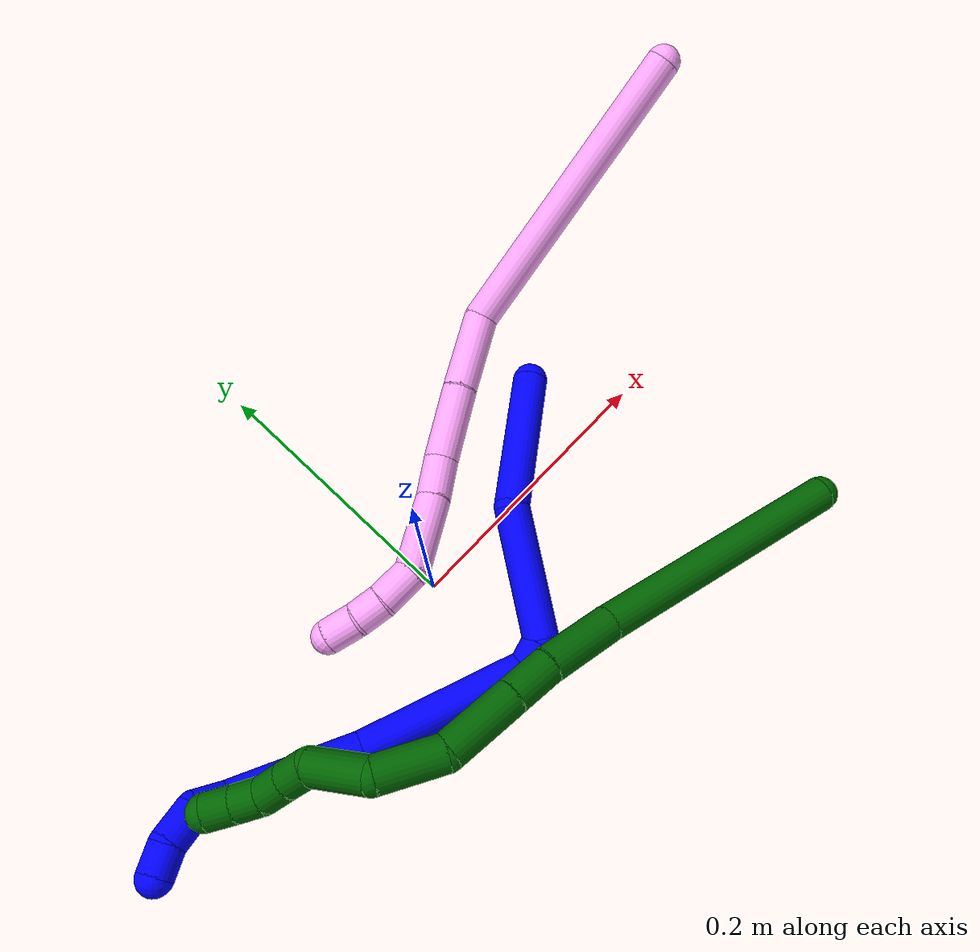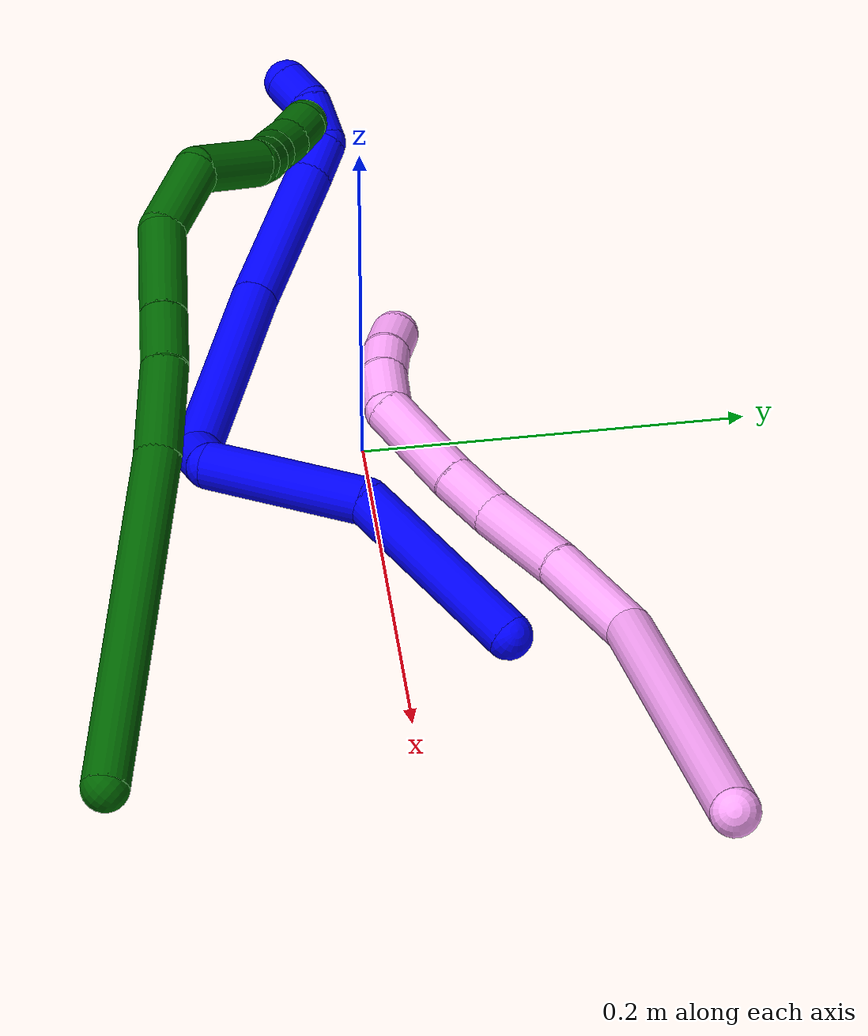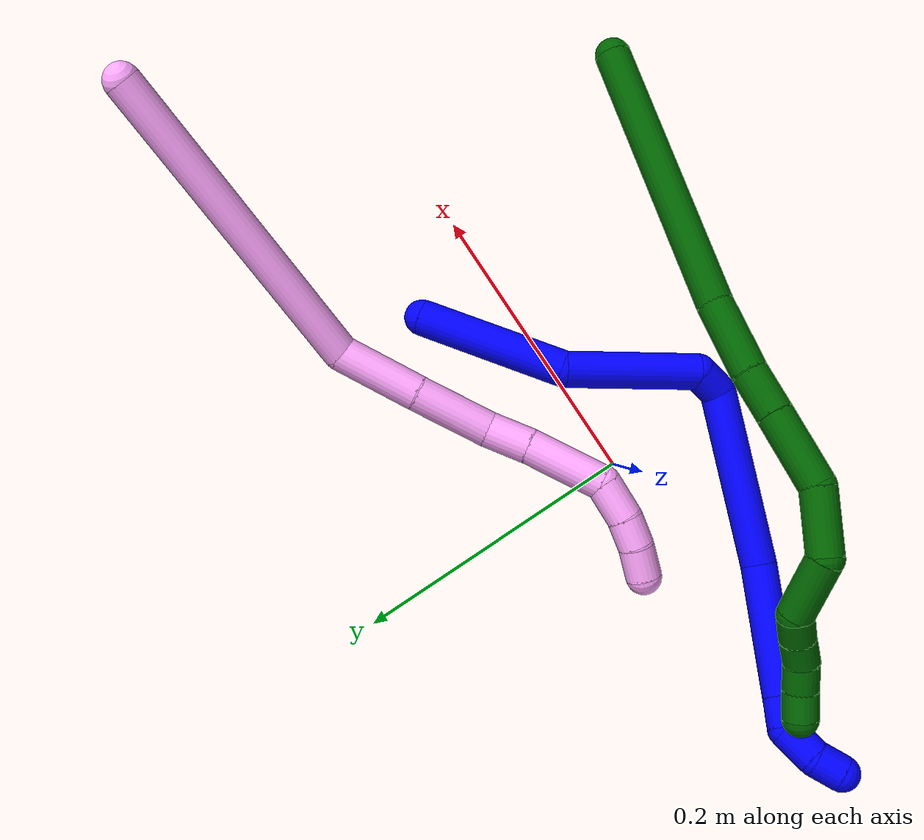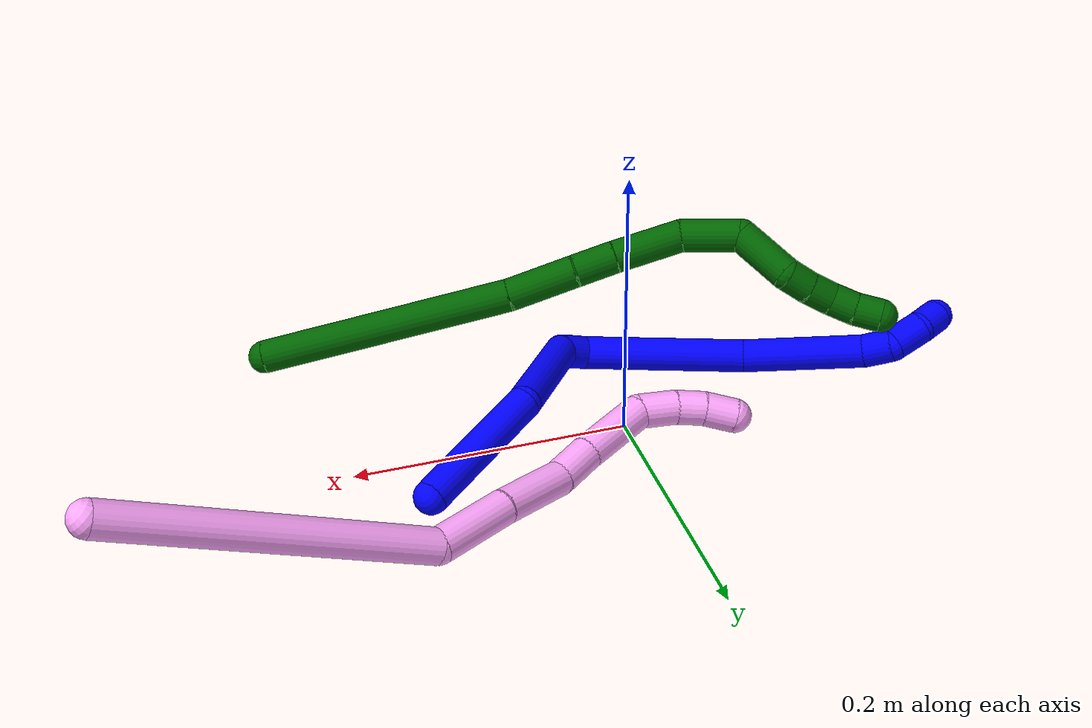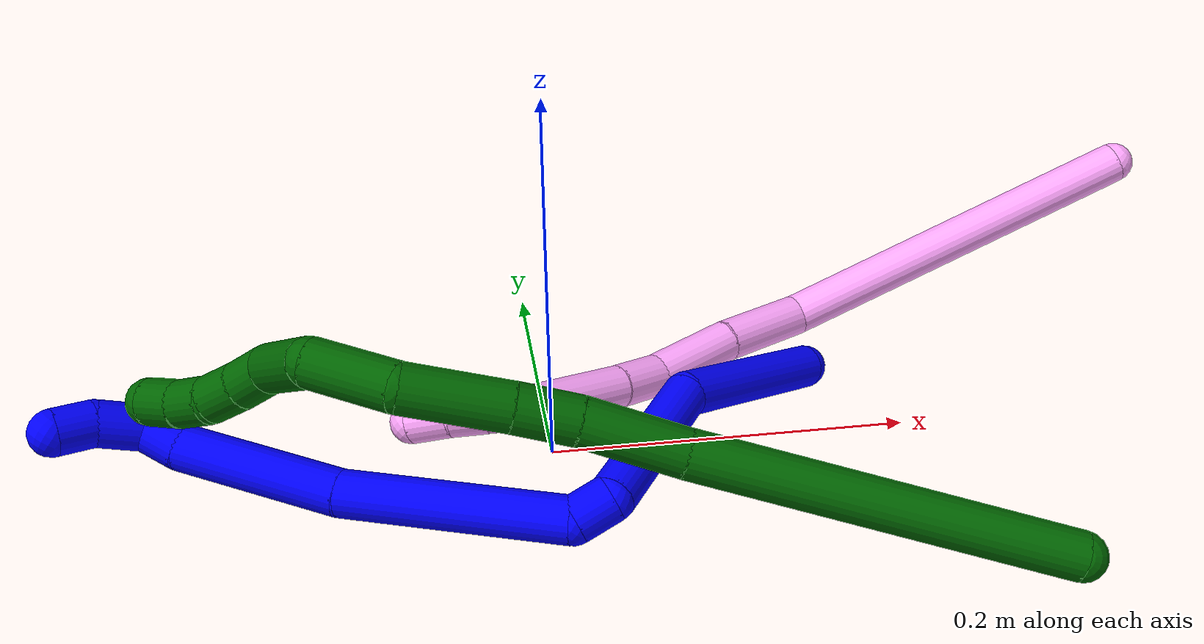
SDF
<sdf version="1.7">
 <world name="default">
  <model name="1">
   <static>0</static>
   <link name="1">
    <collision name="collision-cylinder-e_1_1_4">
     <pose>-0.032006 -0.033837 -0.02488 2.2048 -0.651176 -1.17684</pose>
     <geometry><cylinder><radius>0.0125</radius><length>0.10561</length></cylinder></geometry>
     <surface>
      <friction><ode><mu>1.16</mu><mu2>1.16</mu2><slip1>0</slip1><slip2>0</slip2></ode></friction>
      <contact><ode><kp>1e+06</kp><kd>1</kd><max_vel>0</max_vel><min_depth>0.001</min_depth></ode></contact>
     </surface>
    </collision>
    <visual name="visual-cylinder-e_1_1_4">
     <pose>-0.032006 -0.033837 -0.02488 2.2048 -0.651176 -1.17684</pose>
     <geometry><cylinder><radius>0.0125</radius><length>0.10561</length></cylinder></geometry>
     <material><ambient>0 0 1 1</ambient></material>
    </visual>
    <collision name="collision-cylinder-e_2_4_5">
     <pose>-0.072055 -0.10131 -0.080643 2.31358 -0.174344 -0.39266</pose>
     <geometry><cylinder><radius>0.0125</radius><length>0.092733</length></cylinder></geometry>
     <surface>
      <friction><ode><mu>1.16</mu><mu2>1.16</mu2><slip1>0</slip1><slip2>0</slip2></ode></friction>
      <contact><ode><kp>1e+06</kp><kd>1</kd><max_vel>0</max_vel><min_depth>0.001</min_depth></ode></contact>
     </surface>
    </collision>
    <visual name="visual-cylinder-e_2_4_5">
     <pose>-0.072055 -0.10131 -0.080643 2.31358 -0.174344 -0.39266</pose>
     <geometry><cylinder><radius>0.0125</radius><length>0.092733</length></cylinder></geometry>
     <material><ambient>0 0 1 1</ambient></material>
    </visual>
    <collision name="collision-cylinder-e_3_5_6">
     <pose>-0.085355 -0.135998 -0.120915 3.02995 -0.507812 -2.71743</pose>
     <geometry><cylinder><radius>0.0125</radius><length>0.021622</length></cylinder></geometry>
     <surface>
      <friction><ode><mu>1.16</mu><mu2>1.16</mu2><slip1>0</slip1><slip2>0</slip2></ode></friction>
      <contact><ode><kp>1e+06</kp><kd>1</kd><max_vel>0</max_vel><min_depth>0.001</min_depth></ode></contact>
     </surface>
    </collision>
    <visual name="visual-cylinder-e_3_5_6">
     <pose>-0.085355 -0.135998 -0.120915 3.02995 -0.507812 -2.71743</pose>
     <geometry><cylinder><radius>0.0125</radius><length>0.021622</length></cylinder></geometry>
     <material><ambient>0 0 1 1</ambient></material>
    </visual>
    <collision name="collision-cylinder-e_4_6_7">
     <pose>-0.142732 -0.12016 -0.156476 -2.56852 -1.03212 2.18358</pose>
     <geometry><cylinder><radius>0.0125</radius><length>0.121438</length></cylinder></geometry>
     <surface>
      <friction><ode><mu>1.16</mu><mu2>1.16</mu2><slip1>0</slip1><slip2>0</slip2></ode></friction>
      <contact><ode><kp>1e+06</kp><kd>1</kd><max_vel>0</max_vel><min_depth>0.001</min_depth></ode></contact>
     </surface>
    </collision>
    <visual name="visual-cylinder-e_4_6_7">
     <pose>-0.142732 -0.12016 -0.156476 -2.56852 -1.03212 2.18358</pose>
     <geometry><cylinder><radius>0.0125</radius><length>0.121438</length></cylinder></geometry>
     <material><ambient>0 0 1 1</ambient></material>
    </visual>
    <collision name="collision-cylinder-e_5_7_8">
     <pose>-0.23585 -0.089684 -0.195618 -2.33296 -1.14118 1.96554</pose>
     <geometry><cylinder><radius>0.0125</radius><length>0.090192</length></cylinder></geometry>
     <surface>
      <friction><ode><mu>1.16</mu><mu2>1.16</mu2><slip1>0</slip1><slip2>0</slip2></ode></friction>
      <contact><ode><kp>1e+06</kp><kd>1</kd><max_vel>0</max_vel><min_depth>0.001</min_depth></ode></contact>
     </surface>
    </collision>
    <visual name="visual-cylinder-e_5_7_8">
     <pose>-0.23585 -0.089684 -0.195618 -2.33296 -1.14118 1.96554</pose>
     <geometry><cylinder><radius>0.0125</radius><length>0.090192</length></cylinder></geometry>
     <material><ambient>0 0 1 1</ambient></material>
    </visual>
    <collision name="collision-cylinder-e_6_8_9">
     <pose>-0.287565 -0.073432 -0.209363 -1.85385 -1.31738 1.60153</pose>
     <geometry><cylinder><radius>0.0125</radius><length>0.022141</length></cylinder></geometry>
     <surface>
      <friction><ode><mu>1.16</mu><mu2>1.16</mu2><slip1>0</slip1><slip2>0</slip2></ode></friction>
      <contact><ode><kp>1e+06</kp><kd>1</kd><max_vel>0</max_vel><min_depth>0.001</min_depth></ode></contact>
     </surface>
    </collision>
    <visual name="visual-cylinder-e_6_8_9">
     <pose>-0.287565 -0.073432 -0.209363 -1.85385 -1.31738 1.60153</pose>
     <geometry><cylinder><radius>0.0125</radius><length>0.022141</length></cylinder></geometry>
     <material><ambient>0 0 1 1</ambient></material>
    </visual>
    <collision name="collision-cylinder-e_7_9_10">
     <pose>-0.309508 -0.075106 -0.214825 2.39478 -1.05354 -1.95594</pose>
     <geometry><cylinder><radius>0.0125</radius><length>0.025832</length></cylinder></geometry>
     <surface>
      <friction><ode><mu>1.16</mu><mu2>1.16</mu2><slip1>0</slip1><slip2>0</slip2></ode></friction>
      <contact><ode><kp>1e+06</kp><kd>1</kd><max_vel>0</max_vel><min_depth>0.001</min_depth></ode></contact>
     </surface>
    </collision>
    <visual name="visual-cylinder-e_7_9_10">
     <pose>-0.309508 -0.075106 -0.214825 2.39478 -1.05354 -1.95594</pose>
     <geometry><cylinder><radius>0.0125</radius><length>0.025832</length></cylinder></geometry>
     <material><ambient>0 0 1 1</ambient></material>
    </visual>
    <collision name="collision-cylinder-e_8_10_2">
     <pose>-0.327318 -0.084466 -0.225497 2.44352 -0.700195 -1.5741</pose>
     <geometry><cylinder><radius>0.0125</radius><length>0.020433</length></cylinder></geometry>
     <surface>
      <friction><ode><mu>1.16</mu><mu2>1.16</mu2><slip1>0</slip1><slip2>0</slip2></ode></friction>
      <contact><ode><kp>1e+06</kp><kd>1</kd><max_vel>0</max_vel><min_depth>0.001</min_depth></ode></contact>
     </surface>
    </collision>
    <visual name="visual-cylinder-e_8_10_2">
     <pose>-0.327318 -0.084466 -0.225497 2.44352 -0.700195 -1.5741</pose>
     <geometry><cylinder><radius>0.0125</radius><length>0.020433</length></cylinder></geometry>
     <material><ambient>0 0 1 1</ambient></material>
    </visual>
    <collision name="collision-sphere-2">
     <pose>-0.333901 -0.089488 -0.231482 0 -0 0</pose>
     <geometry><sphere><radius>0.0125</radius></sphere></geometry>
     <surface>
      <friction><ode><mu>1.16</mu><mu2>1.16</mu2><slip1>0</slip1><slip2>0</slip2></ode></friction>
      <contact><ode><kp>1e+06</kp><kd>1</kd><max_vel>0</max_vel><min_depth>0.001</min_depth></ode></contact>
     </surface>
    </collision>
    <visual name="visual-sphere-2">
     <pose>-0.333901 -0.089488 -0.231482 0 -0 0</pose>
     <geometry><sphere><radius>0.0125</radius></sphere></geometry>
     <material><ambient>0 0 1 1</ambient></material>
    </visual>
    <collision name="collision-sphere-10">
     <pose>-0.320735 -0.079444 -0.219512 0 -0 0</pose>
     <geometry><sphere><radius>0.0125</radius></sphere></geometry>
     <surface>
      <friction><ode><mu>1.16</mu><mu2>1.16</mu2><slip1>0</slip1><slip2>0</slip2></ode></friction>
      <contact><ode><kp>1e+06</kp><kd>1</kd><max_vel>0</max_vel><min_depth>0.001</min_depth></ode></contact>
     </surface>
    </collision>
    <visual name="visual-sphere-10">
     <pose>-0.320735 -0.079444 -0.219512 0 -0 0</pose>
     <geometry><sphere><radius>0.0125</radius></sphere></geometry>
     <material><ambient>0 0 1 1</ambient></material>
    </visual>
    <collision name="collision-sphere-9">
     <pose>-0.298282 -0.070767 -0.210138 0 -0 0</pose>
     <geometry><sphere><radius>0.0125</radius></sphere></geometry>
     <surface>
      <friction><ode><mu>1.16</mu><mu2>1.16</mu2><slip1>0</slip1><slip2>0</slip2></ode></friction>
      <contact><ode><kp>1e+06</kp><kd>1</kd><max_vel>0</max_vel><min_depth>0.001</min_depth></ode></contact>
     </surface>
    </collision>
    <visual name="visual-sphere-9">
     <pose>-0.298282 -0.070767 -0.210138 0 -0 0</pose>
     <geometry><sphere><radius>0.0125</radius></sphere></geometry>
     <material><ambient>0 0 1 1</ambient></material>
    </visual>
    <collision name="collision-sphere-4">
     <pose>-0.064012 -0.067675 -0.049759 0 -0 0</pose>
     <geometry><sphere><radius>0.0125</radius></sphere></geometry>
     <surface>
      <friction><ode><mu>1.16</mu><mu2>1.16</mu2><slip1>0</slip1><slip2>0</slip2></ode></friction>
      <contact><ode><kp>1e+06</kp><kd>1</kd><max_vel>0</max_vel><min_depth>0.001</min_depth></ode></contact>
     </surface>
    </collision>
    <visual name="visual-sphere-4">
     <pose>-0.064012 -0.067675 -0.049759 0 -0 0</pose>
     <geometry><sphere><radius>0.0125</radius></sphere></geometry>
     <material><ambient>0 0 1 1</ambient></material>
    </visual>
    <collision name="collision-sphere-1">
     <geometry><sphere><radius>0.0125</radius></sphere></geometry>
     <surface>
      <friction><ode><mu>1.16</mu><mu2>1.16</mu2><slip1>0</slip1><slip2>0</slip2></ode></friction>
      <contact><ode><kp>1e+06</kp><kd>1</kd><max_vel>0</max_vel><min_depth>0.001</min_depth></ode></contact>
     </surface>
    </collision>
    <visual name="visual-sphere-1">
     <geometry><sphere><radius>0.0125</radius></sphere></geometry>
     <material><ambient>0 0 1 1</ambient></material>
    </visual>
    <collision name="collision-sphere-8">
     <pose>-0.276848 -0.076097 -0.208587 0 -0 0</pose>
     <geometry><sphere><radius>0.0125</radius></sphere></geometry>
     <surface>
      <friction><ode><mu>1.16</mu><mu2>1.16</mu2><slip1>0</slip1><slip2>0</slip2></ode></friction>
      <contact><ode><kp>1e+06</kp><kd>1</kd><max_vel>0</max_vel><min_depth>0.001</min_depth></ode></contact>
     </surface>
    </collision>
    <visual name="visual-sphere-8">
     <pose>-0.276848 -0.076097 -0.208587 0 -0 0</pose>
     <geometry><sphere><radius>0.0125</radius></sphere></geometry>
     <material><ambient>0 0 1 1</ambient></material>
    </visual>
    <collision name="collision-sphere-5">
     <pose>-0.080098 -0.134945 -0.111527 0 -0 0</pose>
     <geometry><sphere><radius>0.0125</radius></sphere></geometry>
     <surface>
      <friction><ode><mu>1.16</mu><mu2>1.16</mu2><slip1>0</slip1><slip2>0</slip2></ode></friction>
      <contact><ode><kp>1e+06</kp><kd>1</kd><max_vel>0</max_vel><min_depth>0.001</min_depth></ode></contact>
     </surface>
    </collision>
    <visual name="visual-sphere-5">
     <pose>-0.080098 -0.134945 -0.111527 0 -0 0</pose>
     <geometry><sphere><radius>0.0125</radius></sphere></geometry>
     <material><ambient>0 0 1 1</ambient></material>
    </visual>
    <collision name="collision-sphere-6">
     <pose>-0.090612 -0.13705 -0.130303 0 -0 0</pose>
     <geometry><sphere><radius>0.0125</radius></sphere></geometry>
     <surface>
      <friction><ode><mu>1.16</mu><mu2>1.16</mu2><slip1>0</slip1><slip2>0</slip2></ode></friction>
      <contact><ode><kp>1e+06</kp><kd>1</kd><max_vel>0</max_vel><min_depth>0.001</min_depth></ode></contact>
     </surface>
    </collision>
    <visual name="visual-sphere-6">
     <pose>-0.090612 -0.13705 -0.130303 0 -0 0</pose>
     <geometry><sphere><radius>0.0125</radius></sphere></geometry>
     <material><ambient>0 0 1 1</ambient></material>
    </visual>
    <collision name="collision-sphere-7">
     <pose>-0.194852 -0.103271 -0.182648 0 -0 0</pose>
     <geometry><sphere><radius>0.0125</radius></sphere></geometry>
     <surface>
      <friction><ode><mu>1.16</mu><mu2>1.16</mu2><slip1>0</slip1><slip2>0</slip2></ode></friction>
      <contact><ode><kp>1e+06</kp><kd>1</kd><max_vel>0</max_vel><min_depth>0.001</min_depth></ode></contact>
     </surface>
    </collision>
    <visual name="visual-sphere-7">
     <pose>-0.194852 -0.103271 -0.182648 0 -0 0</pose>
     <geometry><sphere><radius>0.0125</radius></sphere></geometry>
     <material><ambient>0 0 1 1</ambient></material>
    </visual>
    <inertial>
     <pose>-0.143126 -0.087763 -0.128316 0 -0 0</pose>
     <mass>0.5</mass>
     <inertia><ixx>-3e-06</ixx><ixy>0</ixy><ixz>0</ixz><iyy>0.000156</iyy><iyz>0</iyz><izz>0.000308</izz></inertia>
    </inertial>
   </link>
   <pose>0.157265 0.054039 0.012408 -0.461743 0.542385 -0.302729</pose>
  </model>
  <model name="4">
   <static>0</static>
   <link name="4">
    <collision name="collision-cylinder-e_1_1_4">
     <pose>-0.053953 0.01799 -0.098352 -2.96068 -0.49484 2.45209</pose>
     <geometry><cylinder><radius>0.0125</radius><length>0.227225</length></cylinder></geometry>
     <surface>
      <friction><ode><mu>1.16</mu><mu2>1.16</mu2><slip1>0</slip1><slip2>0</slip2></ode></friction>
      <contact><ode><kp>1e+06</kp><kd>1</kd><max_vel>0</max_vel><min_depth>0.001</min_depth></ode></contact>
     </surface>
    </collision>
    <visual name="visual-cylinder-e_1_1_4">
     <pose>-0.053953 0.01799 -0.098352 -2.96068 -0.49484 2.45209</pose>
     <geometry><cylinder><radius>0.0125</radius><length>0.227225</length></cylinder></geometry>
     <material><ambient>1 0.65098 0.996078 1</ambient></material>
    </visual>
    <collision name="collision-cylinder-e_2_4_5">
     <pose>-0.133263 0.037095 -0.211459 -3.06617 -1.04256 3.01038</pose>
     <geometry><cylinder><radius>0.0125</radius><length>0.058716</length></cylinder></geometry>
     <surface>
      <friction><ode><mu>1.16</mu><mu2>1.16</mu2><slip1>0</slip1><slip2>0</slip2></ode></friction>
      <contact><ode><kp>1e+06</kp><kd>1</kd><max_vel>0</max_vel><min_depth>0.001</min_depth></ode></contact>
     </surface>
    </collision>
    <visual name="visual-cylinder-e_2_4_5">
     <pose>-0.133263 0.037095 -0.211459 -3.06617 -1.04256 3.01038</pose>
     <geometry><cylinder><radius>0.0125</radius><length>0.058716</length></cylinder></geometry>
     <material><ambient>1 0.65098 0.996078 1</ambient></material>
    </visual>
    <collision name="collision-cylinder-e_3_5_6">
     <pose>-0.181345 0.037523 -0.241586 3.0969 -0.975585 -3.05739</pose>
     <geometry><cylinder><radius>0.0125</radius><length>0.05489</length></cylinder></geometry>
     <surface>
      <friction><ode><mu>1.16</mu><mu2>1.16</mu2><slip1>0</slip1><slip2>0</slip2></ode></friction>
      <contact><ode><kp>1e+06</kp><kd>1</kd><max_vel>0</max_vel><min_depth>0.001</min_depth></ode></contact>
     </surface>
    </collision>
    <visual name="visual-cylinder-e_3_5_6">
     <pose>-0.181345 0.037523 -0.241586 3.0969 -0.975585 -3.05739</pose>
     <geometry><cylinder><radius>0.0125</radius><length>0.05489</length></cylinder></geometry>
     <material><ambient>1 0.65098 0.996078 1</ambient></material>
    </visual>
    <collision name="collision-cylinder-e_4_6_7">
     <pose>-0.21853 0.037222 -0.262476 -3.0715 -1.20548 3.03978</pose>
     <geometry><cylinder><radius>0.0125</radius><length>0.030964</length></cylinder></geometry>
     <surface>
      <friction><ode><mu>1.16</mu><mu2>1.16</mu2><slip1>0</slip1><slip2>0</slip2></ode></friction>
      <contact><ode><kp>1e+06</kp><kd>1</kd><max_vel>0</max_vel><min_depth>0.001</min_depth></ode></contact>
     </surface>
    </collision>
    <visual name="visual-cylinder-e_4_6_7">
     <pose>-0.21853 0.037222 -0.262476 -3.0715 -1.20548 3.03978</pose>
     <geometry><cylinder><radius>0.0125</radius><length>0.030964</length></cylinder></geometry>
     <material><ambient>1 0.65098 0.996078 1</ambient></material>
    </visual>
    <collision name="collision-cylinder-e_5_7_8">
     <pose>-0.258693 0.040225 -0.278794 -2.904 -1.1627 2.78222</pose>
     <geometry><cylinder><radius>0.0125</radius><length>0.056003</length></cylinder></geometry>
     <surface>
      <friction><ode><mu>1.16</mu><mu2>1.16</mu2><slip1>0</slip1><slip2>0</slip2></ode></friction>
      <contact><ode><kp>1e+06</kp><kd>1</kd><max_vel>0</max_vel><min_depth>0.001</min_depth></ode></contact>
     </surface>
    </collision>
    <visual name="visual-cylinder-e_5_7_8">
     <pose>-0.258693 0.040225 -0.278794 -2.904 -1.1627 2.78222</pose>
     <geometry><cylinder><radius>0.0125</radius><length>0.056003</length></cylinder></geometry>
     <material><ambient>1 0.65098 0.996078 1</ambient></material>
    </visual>
    <collision name="collision-cylinder-e_6_8_9">
     <pose>-0.292488 0.048873 -0.299263 -2.58383 -0.617541 1.6785</pose>
     <geometry><cylinder><radius>0.0125</radius><length>0.027955</length></cylinder></geometry>
     <surface>
      <friction><ode><mu>1.16</mu><mu2>1.16</mu2><slip1>0</slip1><slip2>0</slip2></ode></friction>
      <contact><ode><kp>1e+06</kp><kd>1</kd><max_vel>0</max_vel><min_depth>0.001</min_depth></ode></contact>
     </surface>
    </collision>
    <visual name="visual-cylinder-e_6_8_9">
     <pose>-0.292488 0.048873 -0.299263 -2.58383 -0.617541 1.6785</pose>
     <geometry><cylinder><radius>0.0125</radius><length>0.027955</length></cylinder></geometry>
     <material><ambient>1 0.65098 0.996078 1</ambient></material>
    </visual>
    <collision name="collision-cylinder-e_7_9_10">
     <pose>-0.305027 0.060132 -0.316897 -2.56082 -0.436582 1.27712</pose>
     <geometry><cylinder><radius>0.0125</radius><length>0.021026</length></cylinder></geometry>
     <surface>
      <friction><ode><mu>1.16</mu><mu2>1.16</mu2><slip1>0</slip1><slip2>0</slip2></ode></friction>
      <contact><ode><kp>1e+06</kp><kd>1</kd><max_vel>0</max_vel><min_depth>0.001</min_depth></ode></contact>
     </surface>
    </collision>
    <visual name="visual-cylinder-e_7_9_10">
     <pose>-0.305027 0.060132 -0.316897 -2.56082 -0.436582 1.27712</pose>
     <geometry><cylinder><radius>0.0125</radius><length>0.021026</length></cylinder></geometry>
     <material><ambient>1 0.65098 0.996078 1</ambient></material>
    </visual>
    <collision name="collision-cylinder-e_8_10_2">
     <pose>-0.312492 0.070988 -0.334558 -2.61558 -0.263064 0.91342</pose>
     <geometry><cylinder><radius>0.0125</radius><length>0.023221</length></cylinder></geometry>
     <surface>
      <friction><ode><mu>1.16</mu><mu2>1.16</mu2><slip1>0</slip1><slip2>0</slip2></ode></friction>
      <contact><ode><kp>1e+06</kp><kd>1</kd><max_vel>0</max_vel><min_depth>0.001</min_depth></ode></contact>
     </surface>
    </collision>
    <visual name="visual-cylinder-e_8_10_2">
     <pose>-0.312492 0.070988 -0.334558 -2.61558 -0.263064 0.91342</pose>
     <geometry><cylinder><radius>0.0125</radius><length>0.023221</length></cylinder></geometry>
     <material><ambient>1 0.65098 0.996078 1</ambient></material>
    </visual>
    <collision name="collision-sphere-2">
     <pose>-0.315511 0.076617 -0.344253 0 -0 0</pose>
     <geometry><sphere><radius>0.0125</radius></sphere></geometry>
     <surface>
      <friction><ode><mu>1.16</mu><mu2>1.16</mu2><slip1>0</slip1><slip2>0</slip2></ode></friction>
      <contact><ode><kp>1e+06</kp><kd>1</kd><max_vel>0</max_vel><min_depth>0.001</min_depth></ode></contact>
     </surface>
    </collision>
    <visual name="visual-sphere-2">
     <pose>-0.315511 0.076617 -0.344253 0 -0 0</pose>
     <geometry><sphere><radius>0.0125</radius></sphere></geometry>
     <material><ambient>1 0.65098 0.996078 1</ambient></material>
    </visual>
    <collision name="collision-sphere-10">
     <pose>-0.309473 0.065359 -0.324862 0 -0 0</pose>
     <geometry><sphere><radius>0.0125</radius></sphere></geometry>
     <surface>
      <friction><ode><mu>1.16</mu><mu2>1.16</mu2><slip1>0</slip1><slip2>0</slip2></ode></friction>
      <contact><ode><kp>1e+06</kp><kd>1</kd><max_vel>0</max_vel><min_depth>0.001</min_depth></ode></contact>
     </surface>
    </collision>
    <visual name="visual-sphere-10">
     <pose>-0.309473 0.065359 -0.324862 0 -0 0</pose>
     <geometry><sphere><radius>0.0125</radius></sphere></geometry>
     <material><ambient>1 0.65098 0.996078 1</ambient></material>
    </visual>
    <collision name="collision-sphere-9">
     <pose>-0.300582 0.054904 -0.308932 0 -0 0</pose>
     <geometry><sphere><radius>0.0125</radius></sphere></geometry>
     <surface>
      <friction><ode><mu>1.16</mu><mu2>1.16</mu2><slip1>0</slip1><slip2>0</slip2></ode></friction>
      <contact><ode><kp>1e+06</kp><kd>1</kd><max_vel>0</max_vel><min_depth>0.001</min_depth></ode></contact>
     </surface>
    </collision>
    <visual name="visual-sphere-9">
     <pose>-0.300582 0.054904 -0.308932 0 -0 0</pose>
     <geometry><sphere><radius>0.0125</radius></sphere></geometry>
     <material><ambient>1 0.65098 0.996078 1</ambient></material>
    </visual>
    <collision name="collision-sphere-4">
     <pose>-0.107907 0.03598 -0.196704 0 -0 0</pose>
     <geometry><sphere><radius>0.0125</radius></sphere></geometry>
     <surface>
      <friction><ode><mu>1.16</mu><mu2>1.16</mu2><slip1>0</slip1><slip2>0</slip2></ode></friction>
      <contact><ode><kp>1e+06</kp><kd>1</kd><max_vel>0</max_vel><min_depth>0.001</min_depth></ode></contact>
     </surface>
    </collision>
    <visual name="visual-sphere-4">
     <pose>-0.107907 0.03598 -0.196704 0 -0 0</pose>
     <geometry><sphere><radius>0.0125</radius></sphere></geometry>
     <material><ambient>1 0.65098 0.996078 1</ambient></material>
    </visual>
    <collision name="collision-sphere-1">
     <geometry><sphere><radius>0.0125</radius></sphere></geometry>
     <surface>
      <friction><ode><mu>1.16</mu><mu2>1.16</mu2><slip1>0</slip1><slip2>0</slip2></ode></friction>
      <contact><ode><kp>1e+06</kp><kd>1</kd><max_vel>0</max_vel><min_depth>0.001</min_depth></ode></contact>
     </surface>
    </collision>
    <visual name="visual-sphere-1">
     <geometry><sphere><radius>0.0125</radius></sphere></geometry>
     <material><ambient>1 0.65098 0.996078 1</ambient></material>
    </visual>
    <collision name="collision-sphere-8">
     <pose>-0.284395 0.042841 -0.289594 0 -0 0</pose>
     <geometry><sphere><radius>0.0125</radius></sphere></geometry>
     <surface>
      <friction><ode><mu>1.16</mu><mu2>1.16</mu2><slip1>0</slip1><slip2>0</slip2></ode></friction>
      <contact><ode><kp>1e+06</kp><kd>1</kd><max_vel>0</max_vel><min_depth>0.001</min_depth></ode></contact>
     </surface>
    </collision>
    <visual name="visual-sphere-8">
     <pose>-0.284395 0.042841 -0.289594 0 -0 0</pose>
     <geometry><sphere><radius>0.0125</radius></sphere></geometry>
     <material><ambient>1 0.65098 0.996078 1</ambient></material>
    </visual>
    <collision name="collision-sphere-5">
     <pose>-0.15862 0.03821 -0.226214 0 -0 0</pose>
     <geometry><sphere><radius>0.0125</radius></sphere></geometry>
     <surface>
      <friction><ode><mu>1.16</mu><mu2>1.16</mu2><slip1>0</slip1><slip2>0</slip2></ode></friction>
      <contact><ode><kp>1e+06</kp><kd>1</kd><max_vel>0</max_vel><min_depth>0.001</min_depth></ode></contact>
     </surface>
    </collision>
    <visual name="visual-sphere-5">
     <pose>-0.15862 0.03821 -0.226214 0 -0 0</pose>
     <geometry><sphere><radius>0.0125</radius></sphere></geometry>
     <material><ambient>1 0.65098 0.996078 1</ambient></material>
    </visual>
    <collision name="collision-sphere-6">
     <pose>-0.20407 0.036835 -0.256959 0 -0 0</pose>
     <geometry><sphere><radius>0.0125</radius></sphere></geometry>
     <surface>
      <friction><ode><mu>1.16</mu><mu2>1.16</mu2><slip1>0</slip1><slip2>0</slip2></ode></friction>
      <contact><ode><kp>1e+06</kp><kd>1</kd><max_vel>0</max_vel><min_depth>0.001</min_depth></ode></contact>
     </surface>
    </collision>
    <visual name="visual-sphere-6">
     <pose>-0.20407 0.036835 -0.256959 0 -0 0</pose>
     <geometry><sphere><radius>0.0125</radius></sphere></geometry>
     <material><ambient>1 0.65098 0.996078 1</ambient></material>
    </visual>
    <collision name="collision-sphere-7">
     <pose>-0.232991 0.03761 -0.267993 0 -0 0</pose>
     <geometry><sphere><radius>0.0125</radius></sphere></geometry>
     <surface>
      <friction><ode><mu>1.16</mu><mu2>1.16</mu2><slip1>0</slip1><slip2>0</slip2></ode></friction>
      <contact><ode><kp>1e+06</kp><kd>1</kd><max_vel>0</max_vel><min_depth>0.001</min_depth></ode></contact>
     </surface>
    </collision>
    <visual name="visual-sphere-7">
     <pose>-0.232991 0.03761 -0.267993 0 -0 0</pose>
     <geometry><sphere><radius>0.0125</radius></sphere></geometry>
     <material><ambient>1 0.65098 0.996078 1</ambient></material>
    </visual>
    <inertial>
     <pose>-0.146278 0.032019 -0.189126 0 -0 0</pose>
     <mass>0.5</mass>
     <inertia>
      <ixx>-0.000159</ixx>
      <ixy>0</ixy>
      <ixz>0</ixz>
      <iyy>0.001424</iyy>
      <iyz>0</iyz>
      <izz>0.000332</izz>
     </inertia>
    </inertial>
   </link>
   <pose>0.377524 0.128912 0.103312 0.625055 0.403045 0.826723</pose>
  </model>
  <model name="6">
   <static>0</static>
   <link name="6">
    <collision name="collision-cylinder-e_1_1_4">
     <pose>-0.085871 0.003473 -0.043919 -3.06268 -1.09676 3.01253</pose>
     <geometry><cylinder><radius>0.0125</radius><length>0.193026</length></cylinder></geometry>
     <surface>
      <friction><ode><mu>1.16</mu><mu2>1.16</mu2><slip1>0</slip1><slip2>0</slip2></ode></friction>
      <contact><ode><kp>1e+06</kp><kd>1</kd><max_vel>0</max_vel><min_depth>0.001</min_depth></ode></contact>
     </surface>
    </collision>
    <visual name="visual-cylinder-e_1_1_4">
     <pose>-0.085871 0.003473 -0.043919 -3.06268 -1.09676 3.01253</pose>
     <geometry><cylinder><radius>0.0125</radius><length>0.193026</length></cylinder></geometry>
     <material><ambient>0 0.392157 0.003922 1</ambient></material>
    </visual>
    <collision name="collision-cylinder-e_2_4_5">
     <pose>-0.193946 0.00667 -0.101839 3.12194 -1.00813 -3.10597</pose>
     <geometry><cylinder><radius>0.0125</radius><length>0.052502</length></cylinder></geometry>
     <surface>
      <friction><ode><mu>1.16</mu><mu2>1.16</mu2><slip1>0</slip1><slip2>0</slip2></ode></friction>
      <contact><ode><kp>1e+06</kp><kd>1</kd><max_vel>0</max_vel><min_depth>0.001</min_depth></ode></contact>
     </surface>
    </collision>
    <visual name="visual-cylinder-e_2_4_5">
     <pose>-0.193946 0.00667 -0.101839 3.12194 -1.00813 -3.10597</pose>
     <geometry><cylinder><radius>0.0125</radius><length>0.052502</length></cylinder></geometry>
     <material><ambient>0 0.392157 0.003922 1</ambient></material>
    </visual>
    <collision name="collision-cylinder-e_3_5_6">
     <pose>-0.22892 0.007629 -0.124909 -3.00639 -0.948904 2.87946</pose>
     <geometry><cylinder><radius>0.0125</radius><length>0.031422</length></cylinder></geometry>
     <surface>
      <friction><ode><mu>1.16</mu><mu2>1.16</mu2><slip1>0</slip1><slip2>0</slip2></ode></friction>
      <contact><ode><kp>1e+06</kp><kd>1</kd><max_vel>0</max_vel><min_depth>0.001</min_depth></ode></contact>
     </surface>
    </collision>
    <visual name="visual-cylinder-e_3_5_6">
     <pose>-0.22892 0.007629 -0.124909 -3.00639 -0.948904 2.87946</pose>
     <geometry><cylinder><radius>0.0125</radius><length>0.031422</length></cylinder></geometry>
     <material><ambient>0 0.392157 0.003922 1</ambient></material>
    </visual>
    <collision name="collision-cylinder-e_4_6_7">
     <pose>-0.26344 0.011814 -0.148895 -2.94629 -0.960664 2.76989</pose>
     <geometry><cylinder><radius>0.0125</radius><length>0.053078</length></cylinder></geometry>
     <surface>
      <friction><ode><mu>1.16</mu><mu2>1.16</mu2><slip1>0</slip1><slip2>0</slip2></ode></friction>
      <contact><ode><kp>1e+06</kp><kd>1</kd><max_vel>0</max_vel><min_depth>0.001</min_depth></ode></contact>
     </surface>
    </collision>
    <visual name="visual-cylinder-e_4_6_7">
     <pose>-0.26344 0.011814 -0.148895 -2.94629 -0.960664 2.76989</pose>
     <geometry><cylinder><radius>0.0125</radius><length>0.053078</length></cylinder></geometry>
     <material><ambient>0 0.392157 0.003922 1</ambient></material>
    </visual>
    <collision name="collision-cylinder-e_5_7_8">
     <pose>-0.307592 0.01553 -0.167777 -2.95104 -1.39244 2.91392</pose>
     <geometry><cylinder><radius>0.0125</radius><length>0.045524</length></cylinder></geometry>
     <surface>
      <friction><ode><mu>1.16</mu><mu2>1.16</mu2><slip1>0</slip1><slip2>0</slip2></ode></friction>
      <contact><ode><kp>1e+06</kp><kd>1</kd><max_vel>0</max_vel><min_depth>0.001</min_depth></ode></contact>
     </surface>
    </collision>
    <visual name="visual-cylinder-e_5_7_8">
     <pose>-0.307592 0.01553 -0.167777 -2.95104 -1.39244 2.91392</pose>
     <geometry><cylinder><radius>0.0125</radius><length>0.045524</length></cylinder></geometry>
     <material><ambient>0 0.392157 0.003922 1</ambient></material>
    </visual>
    <collision name="collision-cylinder-e_6_8_9">
     <pose>-0.348848 0.021956 -0.161506 -0.505168 -1.01551 0.285268</pose>
     <geometry><cylinder><radius>0.0125</radius><length>0.04438</length></cylinder></geometry>
     <surface>
      <friction><ode><mu>1.16</mu><mu2>1.16</mu2><slip1>0</slip1><slip2>0</slip2></ode></friction>
      <contact><ode><kp>1e+06</kp><kd>1</kd><max_vel>0</max_vel><min_depth>0.001</min_depth></ode></contact>
     </surface>
    </collision>
    <visual name="visual-cylinder-e_6_8_9">
     <pose>-0.348848 0.021956 -0.161506 -0.505168 -1.01551 0.285268</pose>
     <geometry><cylinder><radius>0.0125</radius><length>0.04438</length></cylinder></geometry>
     <material><ambient>0 0.392157 0.003922 1</ambient></material>
    </visual>
    <collision name="collision-cylinder-e_7_9_10">
     <pose>-0.375362 0.034028 -0.150528 -1.45586 -0.870548 0.785758</pose>
     <geometry><cylinder><radius>0.0125</radius><length>0.020029</length></cylinder></geometry>
     <surface>
      <friction><ode><mu>1.16</mu><mu2>1.16</mu2><slip1>0</slip1><slip2>0</slip2></ode></friction>
      <contact><ode><kp>1e+06</kp><kd>1</kd><max_vel>0</max_vel><min_depth>0.001</min_depth></ode></contact>
     </surface>
    </collision>
    <visual name="visual-cylinder-e_7_9_10">
     <pose>-0.375362 0.034028 -0.150528 -1.45586 -0.870548 0.785758</pose>
     <geometry><cylinder><radius>0.0125</radius><length>0.020029</length></cylinder></geometry>
     <material><ambient>0 0.392157 0.003922 1</ambient></material>
    </visual>
    <collision name="collision-cylinder-e_8_10_11">
     <pose>-0.390971 0.046513 -0.149777 -1.56891 -0.918372 0.916873</pose>
     <geometry><cylinder><radius>0.0125</radius><length>0.020012</length></cylinder></geometry>
     <surface>
      <friction><ode><mu>1.16</mu><mu2>1.16</mu2><slip1>0</slip1><slip2>0</slip2></ode></friction>
      <contact><ode><kp>1e+06</kp><kd>1</kd><max_vel>0</max_vel><min_depth>0.001</min_depth></ode></contact>
     </surface>
    </collision>
    <visual name="visual-cylinder-e_8_10_11">
     <pose>-0.390971 0.046513 -0.149777 -1.56891 -0.918372 0.916873</pose>
     <geometry><cylinder><radius>0.0125</radius><length>0.020012</length></cylinder></geometry>
     <material><ambient>0 0.392157 0.003922 1</ambient></material>
    </visual>
    <collision name="collision-cylinder-e_9_11_12">
     <pose>-0.408183 0.056291 -0.148915 -1.34492 -1.18152 0.980981</pose>
     <geometry><cylinder><radius>0.0125</radius><length>0.020021</length></cylinder></geometry>
     <surface>
      <friction><ode><mu>1.16</mu><mu2>1.16</mu2><slip1>0</slip1><slip2>0</slip2></ode></friction>
      <contact><ode><kp>1e+06</kp><kd>1</kd><max_vel>0</max_vel><min_depth>0.001</min_depth></ode></contact>
     </surface>
    </collision>
    <visual name="visual-cylinder-e_9_11_12">
     <pose>-0.408183 0.056291 -0.148915 -1.34492 -1.18152 0.980981</pose>
     <geometry><cylinder><radius>0.0125</radius><length>0.020021</length></cylinder></geometry>
     <material><ambient>0 0.392157 0.003922 1</ambient></material>
    </visual>
    <collision name="collision-cylinder-e_10_12_2">
     <pose>-0.42719 0.06225 -0.148066 -1.57201 -1.34326 1.34444</pose>
     <geometry><cylinder><radius>0.0125</radius><length>0.020007</length></cylinder></geometry>
     <surface>
      <friction><ode><mu>1.16</mu><mu2>1.16</mu2><slip1>0</slip1><slip2>0</slip2></ode></friction>
      <contact><ode><kp>1e+06</kp><kd>1</kd><max_vel>0</max_vel><min_depth>0.001</min_depth></ode></contact>
     </surface>
    </collision>
    <visual name="visual-cylinder-e_10_12_2">
     <pose>-0.42719 0.06225 -0.148066 -1.57201 -1.34326 1.34444</pose>
     <geometry><cylinder><radius>0.0125</radius><length>0.020007</length></cylinder></geometry>
     <material><ambient>0 0.392157 0.003922 1</ambient></material>
    </visual>
    <collision name="collision-sphere-2">
     <pose>-0.436935 0.064507 -0.148069 0 -0 0</pose>
     <geometry><sphere><radius>0.0125</radius></sphere></geometry>
     <surface>
      <friction><ode><mu>1.16</mu><mu2>1.16</mu2><slip1>0</slip1><slip2>0</slip2></ode></friction>
      <contact><ode><kp>1e+06</kp><kd>1</kd><max_vel>0</max_vel><min_depth>0.001</min_depth></ode></contact>
     </surface>
    </collision>
    <visual name="visual-sphere-2">
     <pose>-0.436935 0.064507 -0.148069 0 -0 0</pose>
     <geometry><sphere><radius>0.0125</radius></sphere></geometry>
     <material><ambient>0 0.392157 0.003922 1</ambient></material>
    </visual>
    <collision name="collision-sphere-12">
     <pose>-0.417444 0.059993 -0.148064 0 -0 0</pose>
     <geometry><sphere><radius>0.0125</radius></sphere></geometry>
     <surface>
      <friction><ode><mu>1.16</mu><mu2>1.16</mu2><slip1>0</slip1><slip2>0</slip2></ode></friction>
      <contact><ode><kp>1e+06</kp><kd>1</kd><max_vel>0</max_vel><min_depth>0.001</min_depth></ode></contact>
     </surface>
    </collision>
    <visual name="visual-sphere-12">
     <pose>-0.417444 0.059993 -0.148064 0 -0 0</pose>
     <geometry><sphere><radius>0.0125</radius></sphere></geometry>
     <material><ambient>0 0.392157 0.003922 1</ambient></material>
    </visual>
    <collision name="collision-sphere-11">
     <pose>-0.398921 0.052588 -0.149765 0 -0 0</pose>
     <geometry><sphere><radius>0.0125</radius></sphere></geometry>
     <surface>
      <friction><ode><mu>1.16</mu><mu2>1.16</mu2><slip1>0</slip1><slip2>0</slip2></ode></friction>
      <contact><ode><kp>1e+06</kp><kd>1</kd><max_vel>0</max_vel><min_depth>0.001</min_depth></ode></contact>
     </surface>
    </collision>
    <visual name="visual-sphere-11">
     <pose>-0.398921 0.052588 -0.149765 0 -0 0</pose>
     <geometry><sphere><radius>0.0125</radius></sphere></geometry>
     <material><ambient>0 0.392157 0.003922 1</ambient></material>
    </visual>
    <collision name="collision-sphere-10">
     <pose>-0.38302 0.040439 -0.149788 0 -0 0</pose>
     <geometry><sphere><radius>0.0125</radius></sphere></geometry>
     <surface>
      <friction><ode><mu>1.16</mu><mu2>1.16</mu2><slip1>0</slip1><slip2>0</slip2></ode></friction>
      <contact><ode><kp>1e+06</kp><kd>1</kd><max_vel>0</max_vel><min_depth>0.001</min_depth></ode></contact>
     </surface>
    </collision>
    <visual name="visual-sphere-10">
     <pose>-0.38302 0.040439 -0.149788 0 -0 0</pose>
     <geometry><sphere><radius>0.0125</radius></sphere></geometry>
     <material><ambient>0 0.392157 0.003922 1</ambient></material>
    </visual>
    <collision name="collision-sphere-9">
     <pose>-0.367704 0.027617 -0.151269 0 -0 0</pose>
     <geometry><sphere><radius>0.0125</radius></sphere></geometry>
     <surface>
      <friction><ode><mu>1.16</mu><mu2>1.16</mu2><slip1>0</slip1><slip2>0</slip2></ode></friction>
      <contact><ode><kp>1e+06</kp><kd>1</kd><max_vel>0</max_vel><min_depth>0.001</min_depth></ode></contact>
     </surface>
    </collision>
    <visual name="visual-sphere-9">
     <pose>-0.367704 0.027617 -0.151269 0 -0 0</pose>
     <geometry><sphere><radius>0.0125</radius></sphere></geometry>
     <material><ambient>0 0.392157 0.003922 1</ambient></material>
    </visual>
    <collision name="collision-sphere-4">
     <pose>-0.171742 0.006946 -0.087838 0 -0 0</pose>
     <geometry><sphere><radius>0.0125</radius></sphere></geometry>
     <surface>
      <friction><ode><mu>1.16</mu><mu2>1.16</mu2><slip1>0</slip1><slip2>0</slip2></ode></friction>
      <contact><ode><kp>1e+06</kp><kd>1</kd><max_vel>0</max_vel><min_depth>0.001</min_depth></ode></contact>
     </surface>
    </collision>
    <visual name="visual-sphere-4">
     <pose>-0.171742 0.006946 -0.087838 0 -0 0</pose>
     <geometry><sphere><radius>0.0125</radius></sphere></geometry>
     <material><ambient>0 0.392157 0.003922 1</ambient></material>
    </visual>
    <collision name="collision-sphere-1">
     <geometry><sphere><radius>0.0125</radius></sphere></geometry>
     <surface>
      <friction><ode><mu>1.16</mu><mu2>1.16</mu2><slip1>0</slip1><slip2>0</slip2></ode></friction>
      <contact><ode><kp>1e+06</kp><kd>1</kd><max_vel>0</max_vel><min_depth>0.001</min_depth></ode></contact>
     </surface>
    </collision>
    <visual name="visual-sphere-1">
     <geometry><sphere><radius>0.0125</radius></sphere></geometry>
     <material><ambient>0 0.392157 0.003922 1</ambient></material>
    </visual>
    <collision name="collision-sphere-8">
     <pose>-0.329992 0.016294 -0.171743 0 -0 0</pose>
     <geometry><sphere><radius>0.0125</radius></sphere></geometry>
     <surface>
      <friction><ode><mu>1.16</mu><mu2>1.16</mu2><slip1>0</slip1><slip2>0</slip2></ode></friction>
      <contact><ode><kp>1e+06</kp><kd>1</kd><max_vel>0</max_vel><min_depth>0.001</min_depth></ode></contact>
     </surface>
    </collision>
    <visual name="visual-sphere-8">
     <pose>-0.329992 0.016294 -0.171743 0 -0 0</pose>
     <geometry><sphere><radius>0.0125</radius></sphere></geometry>
     <material><ambient>0 0.392157 0.003922 1</ambient></material>
    </visual>
    <collision name="collision-sphere-5">
     <pose>-0.21615 0.006395 -0.115839 0 -0 0</pose>
     <geometry><sphere><radius>0.0125</radius></sphere></geometry>
     <surface>
      <friction><ode><mu>1.16</mu><mu2>1.16</mu2><slip1>0</slip1><slip2>0</slip2></ode></friction>
      <contact><ode><kp>1e+06</kp><kd>1</kd><max_vel>0</max_vel><min_depth>0.001</min_depth></ode></contact>
     </surface>
    </collision>
    <visual name="visual-sphere-5">
     <pose>-0.21615 0.006395 -0.115839 0 -0 0</pose>
     <geometry><sphere><radius>0.0125</radius></sphere></geometry>
     <material><ambient>0 0.392157 0.003922 1</ambient></material>
    </visual>
    <collision name="collision-sphere-6">
     <pose>-0.241689 0.008863 -0.133978 0 -0 0</pose>
     <geometry><sphere><radius>0.0125</radius></sphere></geometry>
     <surface>
      <friction><ode><mu>1.16</mu><mu2>1.16</mu2><slip1>0</slip1><slip2>0</slip2></ode></friction>
      <contact><ode><kp>1e+06</kp><kd>1</kd><max_vel>0</max_vel><min_depth>0.001</min_depth></ode></contact>
     </surface>
    </collision>
    <visual name="visual-sphere-6">
     <pose>-0.241689 0.008863 -0.133978 0 -0 0</pose>
     <geometry><sphere><radius>0.0125</radius></sphere></geometry>
     <material><ambient>0 0.392157 0.003922 1</ambient></material>
    </visual>
    <collision name="collision-sphere-7">
     <pose>-0.285191 0.014765 -0.163812 0 -0 0</pose>
     <geometry><sphere><radius>0.0125</radius></sphere></geometry>
     <surface>
      <friction><ode><mu>1.16</mu><mu2>1.16</mu2><slip1>0</slip1><slip2>0</slip2></ode></friction>
      <contact><ode><kp>1e+06</kp><kd>1</kd><max_vel>0</max_vel><min_depth>0.001</min_depth></ode></contact>
     </surface>
    </collision>
    <visual name="visual-sphere-7">
     <pose>-0.285191 0.014765 -0.163812 0 -0 0</pose>
     <geometry><sphere><radius>0.0125</radius></sphere></geometry>
     <material><ambient>0 0.392157 0.003922 1</ambient></material>
    </visual>
    <inertial>
     <pose>-0.218959 0.015107 -0.104827 0 -0 0</pose>
     <mass>0.5</mass>
     <inertia>
      <ixx>-0.000279</ixx>
      <ixy>0</ixy>
      <ixz>0</ixz>
      <iyy>0.000708</iyy>
      <iyz>0</iyz>
      <izz>0.000549</izz>
     </inertia>
    </inertial>
   </link>
   <pose>0.235027 -0.155726 0.01149 -2.10346 0.050004 -0.680926</pose>
  </model>
 </world>
</sdf>
